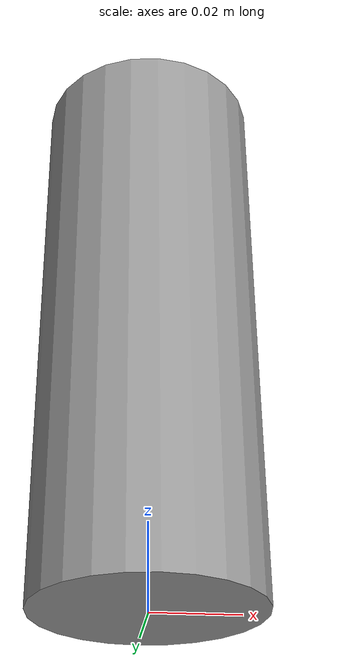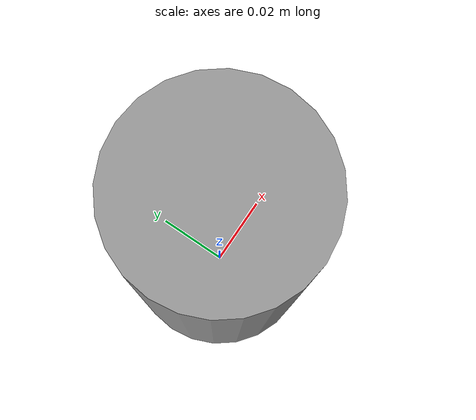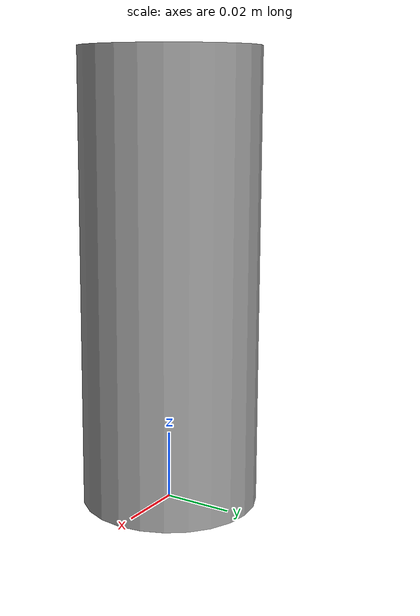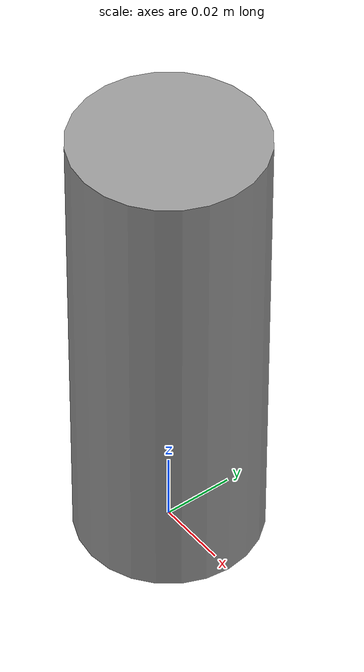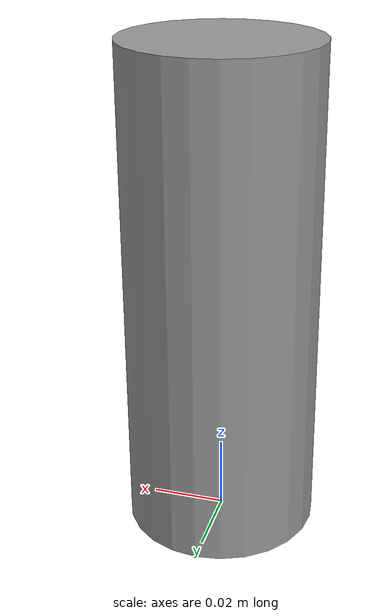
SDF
<?xml version='1.0'?>
<sdf version='1.6'>
  <model name='object3'>
    <link name='link_0'>
      <pose frame=''>0 0 0.0665 0 -0 0</pose>
      <inertial>
        <mass>0.010</mass>
        <inertia>
          <ixx>4.7583e-005</ixx>
          <ixy>0</ixy>
          <ixz>0</ixz>
          <iyy>4.7583e-005</iyy>
          <iyz>0</iyz>
          <izz>3.1250e-006</izz>
        </inertia>
      </inertial>
      <gravity>1</gravity>
      <self_collide>0</self_collide>
      <kinematic>0</kinematic>
      <visual name='visual'>
        <pose frame=''>0 0 0 0 -0 0</pose>
        <geometry>
          <cylinder>
            <radius>0.026</radius>
            <length>0.133</length>
          </cylinder>
        </geometry>
        <material>
          <lighting>1</lighting>
          <script>
            <uri>file://media/materials/scripts/gazebo.material</uri>
            <name>Gazebo/Grey</name>
          </script>
          <ambient>0.3 0.3 0.3 1</ambient>
          <diffuse>0.7 0.7 0.7 1</diffuse>
          <specular>0.01 0.01 0.01 1</specular>
          <emissive>0 0 0 1</emissive>
          <shader type='vertex'>
            <normal_map>__default__</normal_map>
          </shader>
        </material>
        <cast_shadows>1</cast_shadows>
        <transparency>0</transparency>
      </visual>
      <collision name='collision'>
        <laser_retro>0</laser_retro>
        <max_contacts>10</max_contacts>
        <pose frame=''>0 0 0 0 -0 0</pose>
        <geometry>
          <cylinder>
            <radius>0.026</radius>
            <length>0.133</length>
          </cylinder>
        </geometry>
        <surface>
          <friction>
            <ode>
              <mu>1000000.0</mu>
              <mu2>10000.0</mu2>
            </ode>
          </friction>
          <contact>
            <ode>
              <kp>1000000.0</kp>
              <kd>100.0</kd>
              <max_vel>1.0</max_vel>
              <min_depth>0.002</min_depth>
            </ode>
          </contact>
        </surface>
      </collision>
    </link>
    <static>0</static>
    <allow_auto_disable>1</allow_auto_disable>
  </model>
</sdf>
